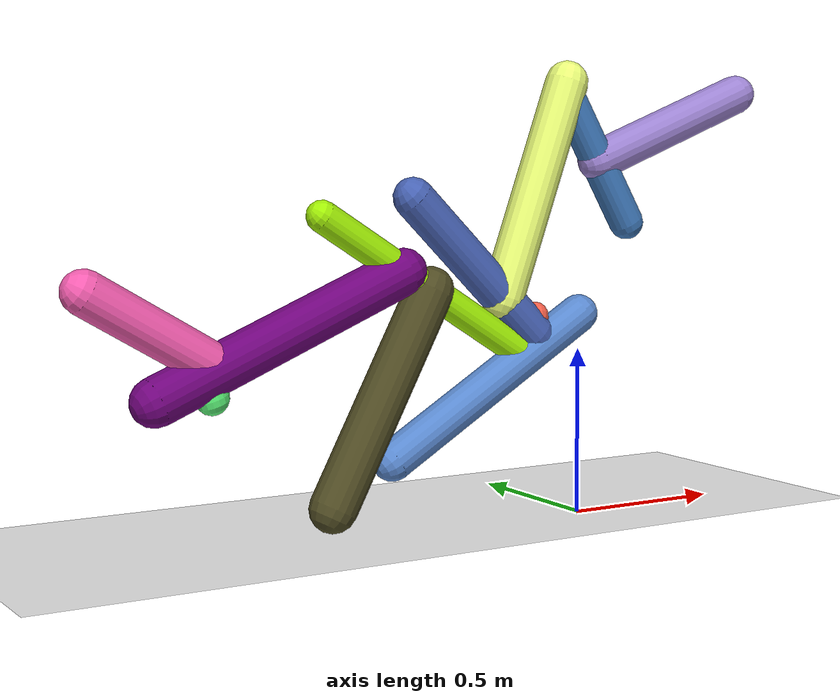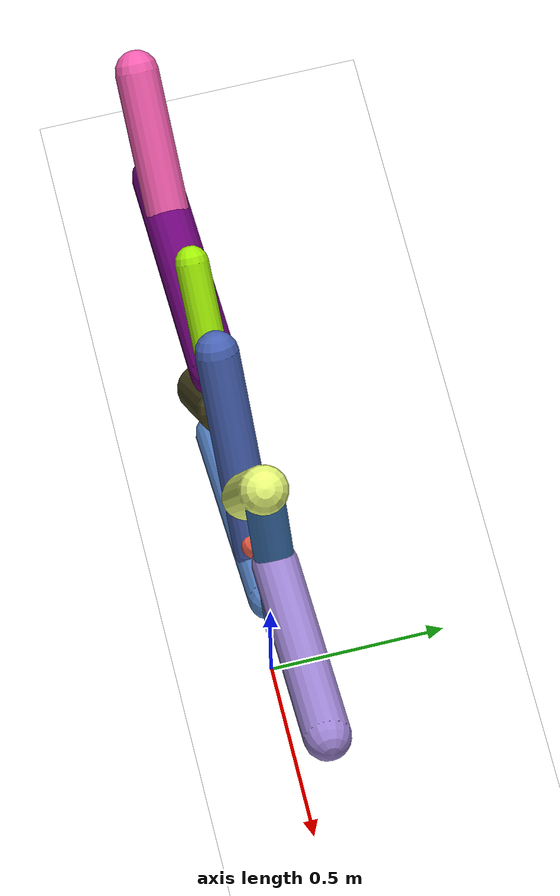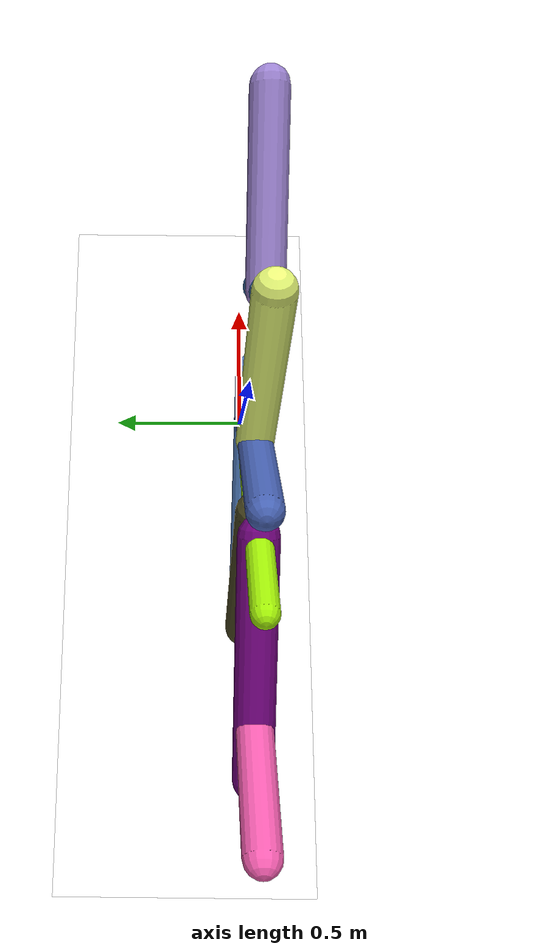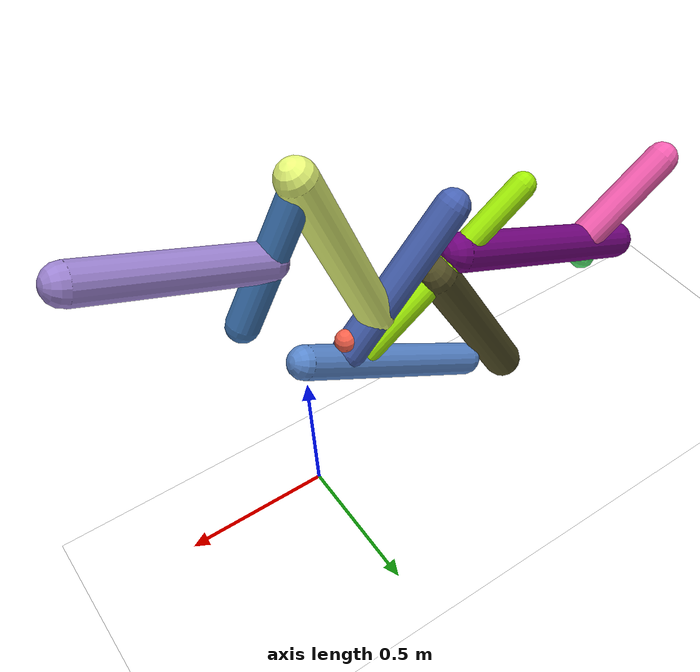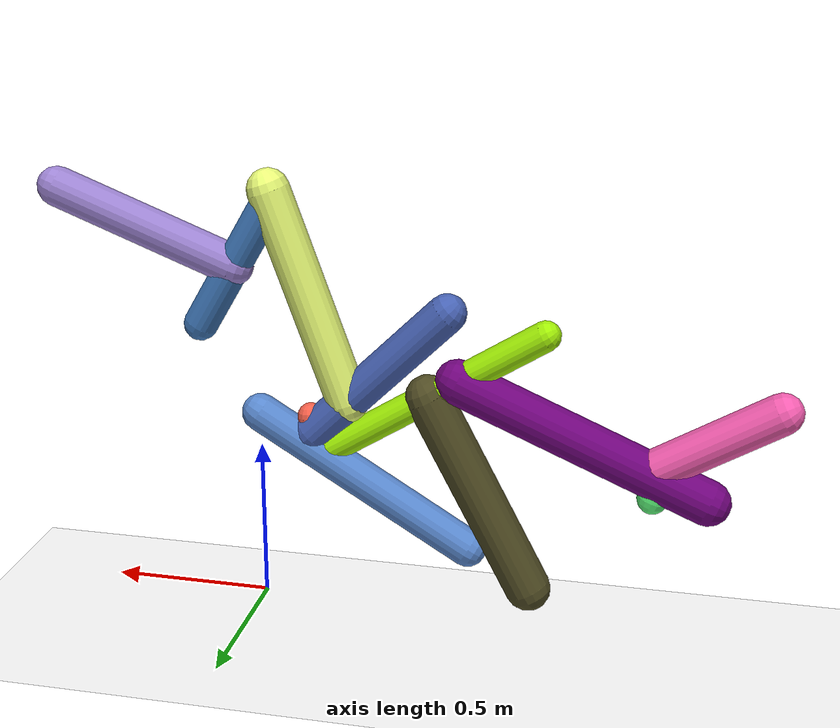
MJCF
<mujoco model="morphology">
  <option timestep="0.01"/>
  <default>
    <default class="/"/>
    <default class="0/"/>
    <default class="0/1/"/>
    <default class="0/1/2/"/>
    <default class="0/1/3/"/>
    <default class="0/1/3/4/"/>
    <default class="0/1/3/5/"/>
    <default class="0/6/"/>
    <default class="0/6/7/"/>
    <default class="0/6/7/8/"/>
    <default class="0/6/7/8/9/"/>
    <default class="0/6/7/8/9/10/"/>
  </default>
  <asset>
    <texture name="texplane" type="2d" builtin="checker" rgb1="0.10000000000000001 0.20000000000000001 0.29999999999999999" rgb2="0.20000000000000001 0.29999999999999999 0.40000000000000002" width="300" height="300"/>
    <material name="MatPlane" class="/" texture="texplane" texrepeat="20 20" specular="1" shininess="1" reflectance="0.5"/>
  </asset>
  <worldbody>
    <light name="//unnamed_light_0" class="/" directional="true" pos="0 0 1.5" dir="0 0 -1.3" cutoff="100" exponent="1" diffuse="1 1 1" specular="0.10000000000000001 0.10000000000000001 0.10000000000000001"/>
    <geom name="ground" class="/" type="plane" size="15 15 0.5" material="MatPlane" rgba="1 1 1 1"/>
    <site name="body" class="/" size="9.9999999999999995e-07 9.9999999999999995e-07 9.9999999999999995e-07" pos="0 0 0.60827062129974363"/>
    <body pos="0 0 0.60827062129974363" name="0/">
      <joint name="0/rootx/" class="/" type="slide" axis="1 0 0" limited="false" stiffness="0" armature="0" damping="0"/>
      <joint name="0/rootz/" class="/" type="slide" axis="0 0 1" limited="false" stiffness="0" armature="0" damping="0"/>
      <joint name="0/rooty/" class="/" type="hinge" axis="0 1 0" limited="false" stiffness="0" armature="0" damping="0"/>
      <geom name="0/geom" class="0/" type="capsule" contype="1" conaffinity="1" condim="3" size="0.058388962293486057" rgba="0.34844816830550429 0.53182494462294994 0.80556334687986331 1" friction="0.59999999999999998 0.10000000000000001 0.10000000000000001" fromto="0 0 0 -0.64711709590166799 0 -0.39128870918807895"/>
      <site name="0/end0" class="0/" size="0.0050000000000000001" pos="-0.64711709590166799 0 -0.39128870918807895"/>
      <site name="0/attach1" class="0/" size="9.9999999999999995e-07 9.9999999999999995e-07 9.9999999999999995e-07" pos="-0.19236206871985798 0 -0.11631450635879848"/>
      <body pos="-0.19236206871985798 0 -0.11631450635879848" name="0/1/">
        <geom name="0/1/geom" class="0/1/" type="capsule" contype="1" conaffinity="1" condim="3" size="0.045903780264267856" rgba="0.63078168673648483 0.93165969312783492 0.020571919506067959 1" friction="0.59999999999999998 0.10000000000000001 0.10000000000000001" fromto="0 0 0 -0.67392961412215657 0 0.42621611311074714"/>
        <site name="0/1/end1" class="0/1/" size="0.0050000000000000001" pos="-0.67392961412215657 0 0.42621611311074714"/>
        <site name="0/1/attach2" class="0/1/" size="9.9999999999999995e-07 9.9999999999999995e-07 9.9999999999999995e-07" pos="-0.3291179892059074 0 0.20814546085333527"/>
        <body pos="-0.3291179892059074 0 0.20814546085333527" name="0/1/2/">
          <joint name="0/1/2/joint/" class="0/1/" type="hinge" axis="0 1 0" limited="true" range="-42.862007869198777 42.862007869198777"/>
          <geom name="0/1/2/geom" class="0/1/2/" type="capsule" contype="1" conaffinity="1" condim="3" size="0.069897601051103112" rgba="0.31208902356211166 0.29601700255698415 0.13890084506977629 1" friction="0.59999999999999998 0.10000000000000001 0.10000000000000001" fromto="0 0 0 -0.31553184651192312 0 -0.60010155205578342"/>
          <site name="0/1/2/end2" class="0/1/2/" size="0.0050000000000000001" pos="-0.31553184651192312 0 -0.60010155205578342"/>
        </body>
        <site name="0/1/attach3" class="0/1/" size="9.9999999999999995e-07 9.9999999999999995e-07 9.9999999999999995e-07" pos="-0.41804721292299246 0 0.26438734024310451"/>
        <body pos="-0.41804721292299246 0 0.26438734024310451" name="0/1/3/">
          <joint name="0/1/3/joint/" class="0/1/" type="hinge" axis="0 1 0" limited="true" range="-58.013253683163015 58.013253683163015"/>
          <geom name="0/1/3/geom" class="0/1/3/" type="capsule" contype="1" conaffinity="1" condim="3" size="0.068707284318070494" rgba="0.43512596250008306 0.01185354215940182 0.48506013300031614 1" friction="0.59999999999999998 0.10000000000000001 0.10000000000000001" fromto="0 0 0 -0.74816116435416802 0 -0.31607611952107351"/>
          <site name="0/1/3/end3" class="0/1/3/" size="0.0050000000000000001" pos="-0.74816116435416802 0 -0.31607611952107351"/>
          <site name="0/1/3/attach4" class="0/1/3/" size="9.9999999999999995e-07 9.9999999999999995e-07 9.9999999999999995e-07" pos="-0.56561550927544257 0 -0.23895594135395015"/>
          <body pos="-0.56561550927544257 0 -0.23895594135395015" name="0/1/3/4/">
            <joint name="0/1/3/4/joint/" class="0/1/3/" type="hinge" axis="0 1 0" limited="true" range="-63.208135696611208 63.208135696611208"/>
            <geom name="0/1/3/4/geom" class="0/1/3/4/" type="capsule" contype="1" conaffinity="1" condim="3" size="0.061538777664412563" rgba="0.95452426885755315 0.36229622689294272 0.6865254339662934 1" friction="0.59999999999999998 0.10000000000000001 0.10000000000000001" fromto="0 0 0 -0.37056742223333583 0 0.21965385630137213"/>
            <site name="0/1/3/4/end4" class="0/1/3/4/" size="0.0050000000000000001" pos="-0.37056742223333583 0 0.21965385630137213"/>
          </body>
          <site name="0/1/3/attach5" class="0/1/3/" size="9.9999999999999995e-07 9.9999999999999995e-07 9.9999999999999995e-07" pos="-0.60783231305922802 0 -0.25679130110572251"/>
          <body pos="-0.60783231305922802 0 -0.25679130110572251" name="0/1/3/5/">
            <geom name="0/1/3/5/geom" class="0/1/3/5/" type="capsule" contype="1" conaffinity="1" condim="3" size="0.047865427119612017" rgba="0.36677628134805595 0.96401411507001045 0.47701713733514128 1" friction="0.59999999999999998 0.10000000000000001 0.10000000000000001" fromto="0 0 0 0.020510320183211306 0 -0.059474299742288572"/>
            <site name="0/1/3/5/end5" class="0/1/3/5/" size="0.0050000000000000001" pos="0.020510320183211306 0 -0.059474299742288572"/>
          </body>
        </body>
      </body>
      <site name="0/attach6" class="0/" size="9.9999999999999995e-07 9.9999999999999995e-07 9.9999999999999995e-07" pos="-0.16807550447853031 0 -0.10162928411264338"/>
      <body pos="-0.16807550447853031 0 -0.10162928411264338" name="0/6/">
        <joint name="0/6/joint/" class="0/" type="hinge" axis="0 1 0" limited="true" range="-55.883319699112668 55.883319699112668"/>
        <geom name="0/6/geom" class="0/6/" type="capsule" contype="1" conaffinity="1" condim="3" size="0.040410210884809408" rgba="0.96057814675582021 0.37721441764898611 0.29222884070074129 1" friction="0.59999999999999998 0.10000000000000001 0.10000000000000001" fromto="0 0 0 0.0095869538654675956 0 0.10377254255732438"/>
        <site name="0/6/end6" class="0/6/" size="0.0050000000000000001" pos="0.0095869538654675956 0 0.10377254255732438"/>
        <site name="0/6/attach7" class="0/6/" size="9.9999999999999995e-07 9.9999999999999995e-07 9.9999999999999995e-07" pos="0.0046525487666467438 0 0.050360815506368117"/>
        <body pos="0.0046525487666467438 0 0.050360815506368117" name="0/6/7/">
          <joint name="0/6/7/joint/" class="0/6/" type="hinge" axis="0 1 0" limited="true" range="-31.588259220558861 31.588259220558861"/>
          <geom name="0/6/7/geom" class="0/6/7/" type="capsule" contype="1" conaffinity="1" condim="3" size="0.059310144419638763" rgba="0.27974008232897352 0.38809138450272607 0.70683359985106964 1" friction="0.59999999999999998 0.10000000000000001 0.10000000000000001" fromto="0 0 0 -0.4132174906991673 0 0.40858318839553864"/>
          <site name="0/6/7/end7" class="0/6/7/" size="0.0050000000000000001" pos="-0.4132174906991673 0 0.40858318839553864"/>
          <site name="0/6/7/attach8" class="0/6/7/" size="9.9999999999999995e-07 9.9999999999999995e-07 9.9999999999999995e-07" pos="-0.11160071104725268 0 0.11034909066831425"/>
          <body pos="-0.11160071104725268 0 0.11034909066831425" name="0/6/7/8/">
            <geom name="0/6/7/8/geom" class="0/6/7/8/" type="capsule" contype="1" conaffinity="1" condim="3" size="0.064247720002927083" rgba="0.91232187837836964 0.98656266053553721 0.46853410878094348 1" friction="0.59999999999999998 0.10000000000000001 0.10000000000000001" fromto="0 0 0 0.2279441413517278 0 0.63557050855496056"/>
            <site name="0/6/7/8/end8" class="0/6/7/8/" size="0.0050000000000000001" pos="0.2279441413517278 0 0.63557050855496056"/>
            <site name="0/6/7/8/attach9" class="0/6/7/8/" size="9.9999999999999995e-07 9.9999999999999995e-07 9.9999999999999995e-07" pos="0.21943978551011101 0 0.61185804226766782"/>
            <body pos="0.21943978551011101 0 0.61185804226766782" name="0/6/7/8/9/">
              <geom name="0/6/7/8/9/geom" class="0/6/7/8/9/" type="capsule" contype="1" conaffinity="1" condim="3" size="0.052189594459885087" rgba="0.24286743463145044 0.46457209205706973 0.71764707625455681 1" friction="0.59999999999999998 0.10000000000000001 0.10000000000000001" fromto="0 0 0 0.23386537804962382 0 -0.39818756041343861"/>
              <site name="0/6/7/8/9/end9" class="0/6/7/8/9/" size="0.0050000000000000001" pos="0.23386537804962382 0 -0.39818756041343861"/>
              <site name="0/6/7/8/9/attach10" class="0/6/7/8/9/" size="9.9999999999999995e-07 9.9999999999999995e-07 9.9999999999999995e-07" pos="0.12346964281303593 0 -0.21022383161995584"/>
              <body pos="0.12346964281303593 0 -0.21022383161995584" name="0/6/7/8/9/10/">
                <joint name="0/6/7/8/9/10/joint/" class="0/6/7/8/9/" type="hinge" axis="0 1 0" limited="true" range="-39.115906268455888 39.115906268455888"/>
                <geom name="0/6/7/8/9/10/geom" class="0/6/7/8/9/10/" type="capsule" contype="1" conaffinity="1" condim="3" size="0.060635010218465159" rgba="0.6097482257596164 0.51288383737860777 0.81707542728971516 1" friction="0.59999999999999998 0.10000000000000001 0.10000000000000001" fromto="0 0 0 0.53975394552364198 0 0.20940064483779974"/>
                <site name="0/6/7/8/9/10/end10" class="0/6/7/8/9/10/" size="0.0050000000000000001" pos="0.53975394552364198 0 0.20940064483779974"/>
              </body>
            </body>
          </body>
        </body>
      </body>
      <camera name="0/side" class="0/" mode="trackcom" pos="0.40000000000000002 -4 0.20000000000000001" quat="0.70699999999999996 0.70699999999999996 0 0"/>
    </body>
  </worldbody>
  <actuator>
    <motor name="0/1/2/motor" class="0/1/2/" ctrllimited="true" ctrlrange="-1 1" gear="53" joint="0/1/2/joint/"/>
    <motor name="0/1/3/motor" class="0/1/3/" ctrllimited="true" ctrlrange="-1 1" gear="55" joint="0/1/3/joint/"/>
    <motor name="0/1/3/4/motor" class="0/1/3/4/" ctrllimited="true" ctrlrange="-1 1" gear="74" joint="0/1/3/4/joint/"/>
    <motor name="0/6/motor" class="0/6/" ctrllimited="true" ctrlrange="-1 1" gear="87" joint="0/6/joint/"/>
    <motor name="0/6/7/motor" class="0/6/7/" ctrllimited="true" ctrlrange="-1 1" gear="83" joint="0/6/7/joint/"/>
    <motor name="0/6/7/8/9/10/motor" class="0/6/7/8/9/10/" ctrllimited="true" ctrlrange="-1 1" gear="57" joint="0/6/7/8/9/10/joint/"/>
  </actuator>
  <sensor>
    <subtreelinvel name="velocity" body="0/"/>
  </sensor>
</mujoco>
